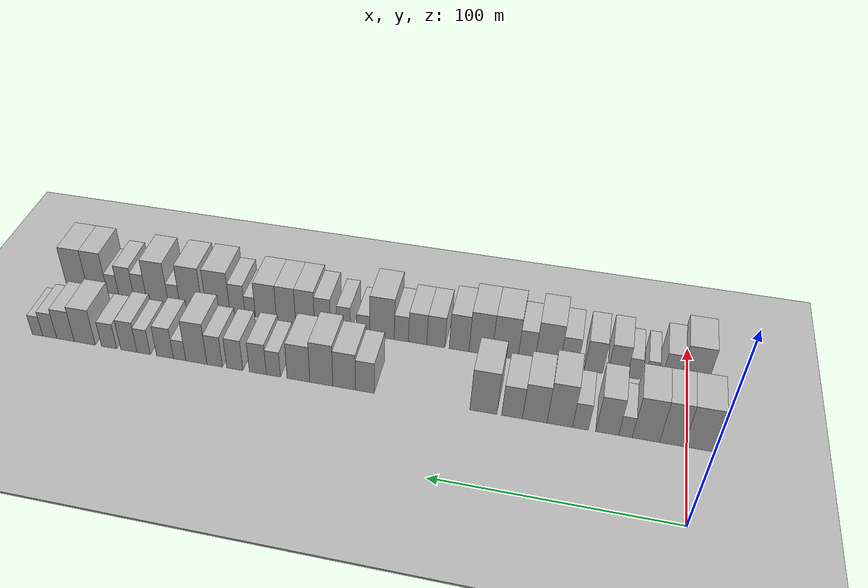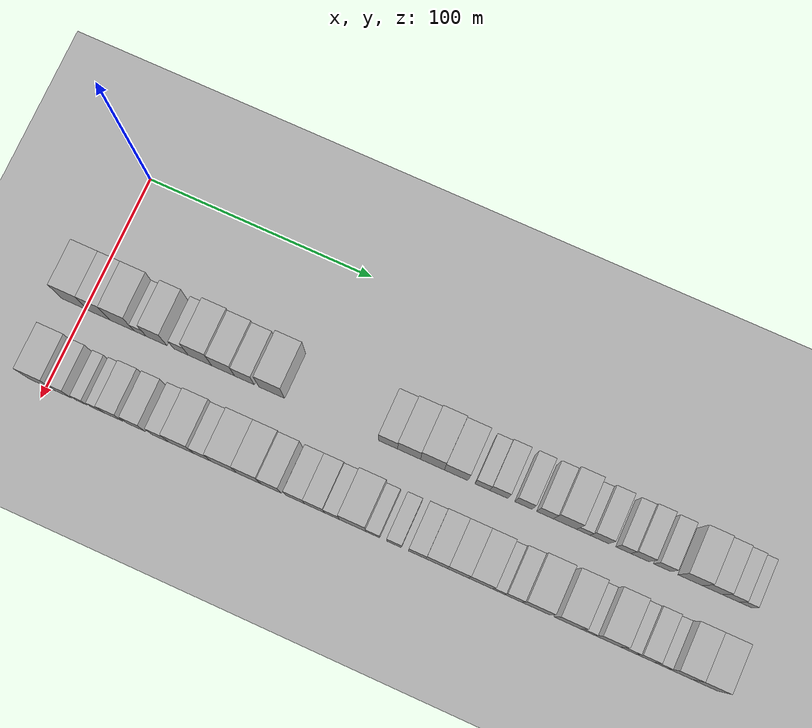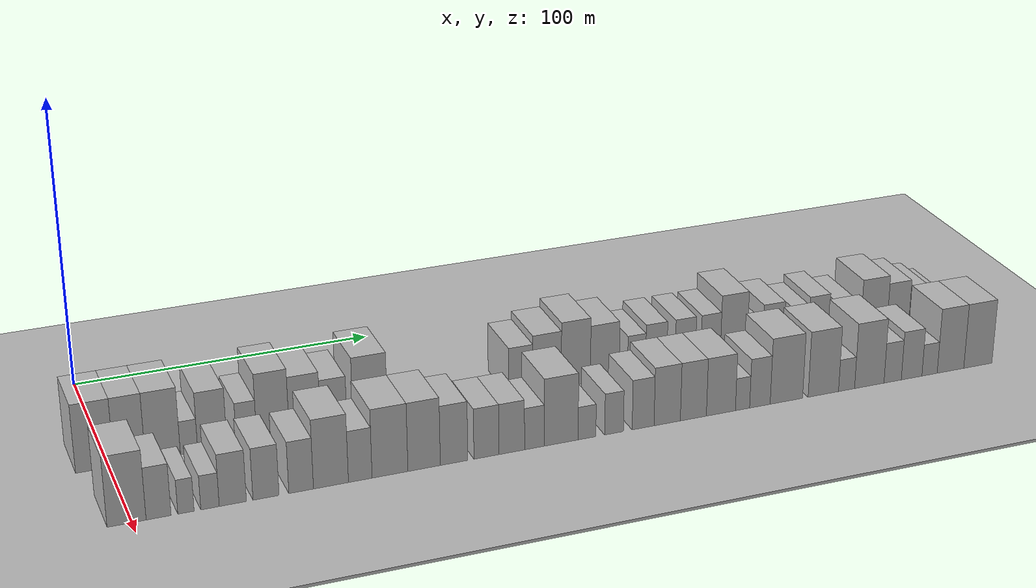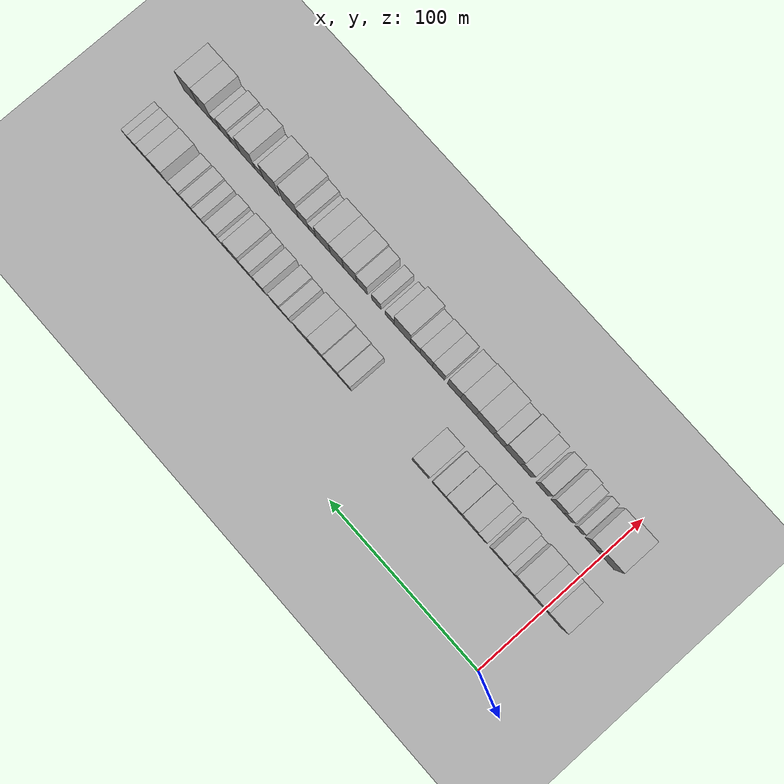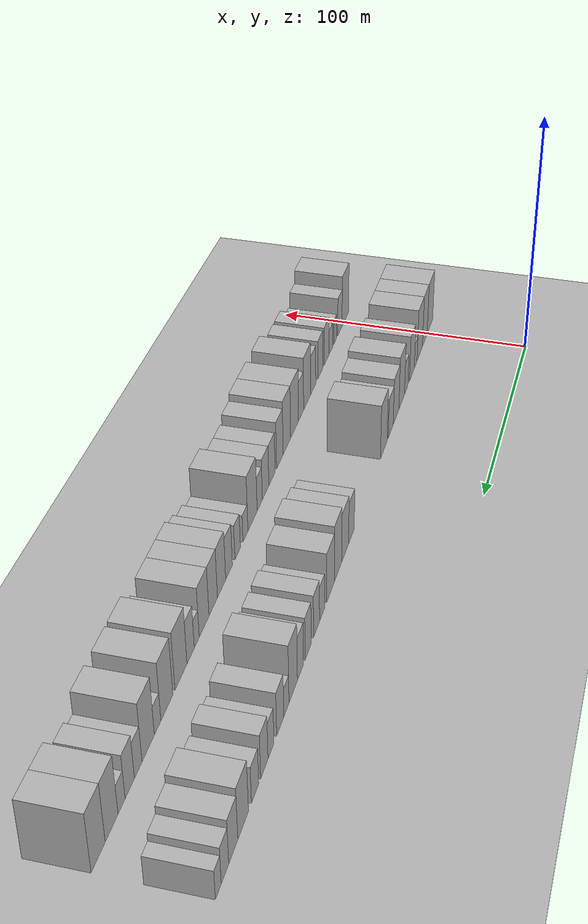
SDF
<sdf version="1.6">
 <world name="default">
  <include><name>ground_plane_1</name><uri>model://HANNAS_ground_plane</uri></include>
  <include>
   <name>ground_plane_2</name>
   <uri>model://HANNAS_ground_plane</uri>
   <pose>100 0 0  0 0 0</pose>
  </include>
  <model name="building_33">
   <static>1</static>
   <pose>50.0000 -4.4543 0 0.000000 0.000000 0.000000</pose>
   <link name="link">
    <pose>0 0 12.00 0 0 0</pose>
    <collision name="collision"><geometry><box><size>20.0000 11.8226 24.0000</size></box></geometry></collision>
    <visual name="visual">
     <cast_shadows>0</cast_shadows>
     <geometry><box><size>20.0000 11.8226 24.0000</size></box></geometry>
     <material>
      <script>
       <uri>model://HANNAS_wall/materials/scripts</uri>
       <uri>model://HANNAS_wall/materials/textures</uri>
       <name>vrc/HANNAS_wall</name>
      </script>
     </material>
    </visual>
   </link>
  </model>
  <model name="building_34">
   <static>1</static>
   <pose>50.0000 6.3101 0 0.000000 0.000000 0.000000</pose>
   <link name="link">
    <pose>0 0 12.00 0 0 0</pose>
    <collision name="collision"><geometry><box><size>20.0000 9.7060 24.0000</size></box></geometry></collision>
    <visual name="visual">
     <cast_shadows>0</cast_shadows>
     <geometry><box><size>20.0000 9.7060 24.0000</size></box></geometry>
     <material>
      <script>
       <uri>model://HANNAS_wall/materials/scripts</uri>
       <uri>model://HANNAS_wall/materials/textures</uri>
       <name>vrc/HANNAS_wall</name>
      </script>
     </material>
    </visual>
   </link>
  </model>
  <model name="building_35">
   <static>1</static>
   <pose>50.0000 16.6346 0 0.000000 0.000000 0.000000</pose>
   <link name="link">
    <pose>0 0 12.00 0 0 0</pose>
    <collision name="collision"><geometry><box><size>20.0000 10.9430 24.0000</size></box></geometry></collision>
    <visual name="visual">
     <cast_shadows>0</cast_shadows>
     <geometry><box><size>20.0000 10.9430 24.0000</size></box></geometry>
     <material>
      <script>
       <uri>model://HANNAS_wall/materials/scripts</uri>
       <uri>model://HANNAS_wall/materials/textures</uri>
       <name>vrc/HANNAS_wall</name>
      </script>
     </material>
    </visual>
   </link>
  </model>
  <model name="building_36">
   <static>1</static>
   <pose>50.0000 24.8381 0 0.000000 0.000000 0.000000</pose>
   <link name="link">
    <pose>0 0 6.00 0 0 0</pose>
    <collision name="collision"><geometry><box><size>20.0000 5.4641 12.0000</size></box></geometry></collision>
    <visual name="visual">
     <cast_shadows>0</cast_shadows>
     <geometry><box><size>20.0000 5.4641 12.0000</size></box></geometry>
     <material>
      <script>
       <uri>model://HANNAS_wall/materials/scripts</uri>
       <uri>model://HANNAS_wall/materials/textures</uri>
       <name>vrc/HANNAS_wall</name>
      </script>
     </material>
    </visual>
   </link>
  </model>
  <model name="building_37">
   <static>1</static>
   <pose>50.0000 32.2049 0 0.000000 0.000000 0.000000</pose>
   <link name="link">
    <pose>0 0 10.50 0 0 0</pose>
    <collision name="collision"><geometry><box><size>20.0000 9.2696 21.0000</size></box></geometry></collision>
    <visual name="visual">
     <cast_shadows>0</cast_shadows>
     <geometry><box><size>20.0000 9.2696 21.0000</size></box></geometry>
     <material>
      <script>
       <uri>model://HANNAS_wall/materials/scripts</uri>
       <uri>model://HANNAS_wall/materials/textures</uri>
       <name>vrc/HANNAS_wall</name>
      </script>
     </material>
    </visual>
   </link>
  </model>
  <model name="building_38">
   <static>1</static>
   <pose>50.0000 43.1029 0 0.000000 0.000000 0.000000</pose>
   <link name="link">
    <pose>0 0 7.50 0 0 0</pose>
    <collision name="collision"><geometry><box><size>20.0000 6.5264 15.0000</size></box></geometry></collision>
    <visual name="visual">
     <cast_shadows>0</cast_shadows>
     <geometry><box><size>20.0000 6.5264 15.0000</size></box></geometry>
     <material>
      <script>
       <uri>model://HANNAS_wall/materials/scripts</uri>
       <uri>model://HANNAS_wall/materials/textures</uri>
       <name>vrc/HANNAS_wall</name>
      </script>
     </material>
    </visual>
   </link>
  </model>
  <model name="building_39">
   <static>1</static>
   <pose>50.0000 51.6203 0 0.000000 0.000000 0.000000</pose>
   <link name="link">
    <pose>0 0 12.00 0 0 0</pose>
    <collision name="collision"><geometry><box><size>20.0000 10.5083 24.0000</size></box></geometry></collision>
    <visual name="visual">
     <cast_shadows>0</cast_shadows>
     <geometry><box><size>20.0000 10.5083 24.0000</size></box></geometry>
     <material>
      <script>
       <uri>model://HANNAS_wall/materials/scripts</uri>
       <uri>model://HANNAS_wall/materials/textures</uri>
       <name>vrc/HANNAS_wall</name>
      </script>
     </material>
    </visual>
   </link>
  </model>
  <model name="building_40">
   <static>1</static>
   <pose>50.0000 61.9553 0 0.000000 0.000000 0.000000</pose>
   <link name="link">
    <pose>0 0 10.50 0 0 0</pose>
    <collision name="collision"><geometry><box><size>20.0000 10.1617 21.0000</size></box></geometry></collision>
    <visual name="visual">
     <cast_shadows>0</cast_shadows>
     <geometry><box><size>20.0000 10.1617 21.0000</size></box></geometry>
     <material>
      <script>
       <uri>model://HANNAS_wall/materials/scripts</uri>
       <uri>model://HANNAS_wall/materials/textures</uri>
       <name>vrc/HANNAS_wall</name>
      </script>
     </material>
    </visual>
   </link>
  </model>
  <model name="building_41">
   <static>1</static>
   <pose>50.0000 71.3873 0 0.000000 0.000000 0.000000</pose>
   <link name="link">
    <pose>0 0 9.00 0 0 0</pose>
    <collision name="collision"><geometry><box><size>20.0000 8.7023 18.0000</size></box></geometry></collision>
    <visual name="visual">
     <cast_shadows>0</cast_shadows>
     <geometry><box><size>20.0000 8.7023 18.0000</size></box></geometry>
     <material>
      <script>
       <uri>model://HANNAS_wall/materials/scripts</uri>
       <uri>model://HANNAS_wall/materials/textures</uri>
       <name>vrc/HANNAS_wall</name>
      </script>
     </material>
    </visual>
   </link>
  </model>
  <model name="building_42">
   <static>1</static>
   <pose>50.0000 83.4444 0 0.000000 0.000000 0.000000</pose>
   <link name="link">
    <pose>0 0 12.00 0 0 0</pose>
    <collision name="collision"><geometry><box><size>20.0000 11.4119 24.0000</size></box></geometry></collision>
    <visual name="visual">
     <cast_shadows>0</cast_shadows>
     <geometry><box><size>20.0000 11.4119 24.0000</size></box></geometry>
     <material>
      <script>
       <uri>model://HANNAS_wall/materials/scripts</uri>
       <uri>model://HANNAS_wall/materials/textures</uri>
       <name>vrc/HANNAS_wall</name>
      </script>
     </material>
    </visual>
   </link>
  </model>
  <model name="building_43">
   <static>1</static>
   <pose>50.0000 134.6343 0 0.000000 0.000000 0.000000</pose>
   <link name="link">
    <pose>0 0 9.00 0 0 0</pose>
    <collision name="collision"><geometry><box><size>20.0000 8.3227 18.0000</size></box></geometry></collision>
    <visual name="visual">
     <cast_shadows>0</cast_shadows>
     <geometry><box><size>20.0000 8.3227 18.0000</size></box></geometry>
     <material>
      <script>
       <uri>model://HANNAS_wall/materials/scripts</uri>
       <uri>model://HANNAS_wall/materials/textures</uri>
       <name>vrc/HANNAS_wall</name>
      </script>
     </material>
    </visual>
   </link>
  </model>
  <model name="building_44">
   <static>1</static>
   <pose>50.0000 143.7940 0 0.000000 0.000000 0.000000</pose>
   <link name="link">
    <pose>0 0 10.50 0 0 0</pose>
    <collision name="collision"><geometry><box><size>20.0000 9.9968 21.0000</size></box></geometry></collision>
    <visual name="visual">
     <cast_shadows>0</cast_shadows>
     <geometry><box><size>20.0000 9.9968 21.0000</size></box></geometry>
     <material>
      <script>
       <uri>model://HANNAS_wall/materials/scripts</uri>
       <uri>model://HANNAS_wall/materials/textures</uri>
       <name>vrc/HANNAS_wall</name>
      </script>
     </material>
    </visual>
   </link>
  </model>
  <model name="building_45">
   <static>1</static>
   <pose>50.0000 153.9346 0 0.000000 0.000000 0.000000</pose>
   <link name="link">
    <pose>0 0 12.00 0 0 0</pose>
    <collision name="collision"><geometry><box><size>20.0000 10.2844 24.0000</size></box></geometry></collision>
    <visual name="visual">
     <cast_shadows>0</cast_shadows>
     <geometry><box><size>20.0000 10.2844 24.0000</size></box></geometry>
     <material>
      <script>
       <uri>model://HANNAS_wall/materials/scripts</uri>
       <uri>model://HANNAS_wall/materials/textures</uri>
       <name>vrc/HANNAS_wall</name>
      </script>
     </material>
    </visual>
   </link>
  </model>
  <model name="building_46">
   <static>1</static>
   <pose>50.0000 164.1987 0 0.000000 0.000000 0.000000</pose>
   <link name="link">
    <pose>0 0 10.50 0 0 0</pose>
    <collision name="collision"><geometry><box><size>20.0000 10.2437 21.0000</size></box></geometry></collision>
    <visual name="visual">
     <cast_shadows>0</cast_shadows>
     <geometry><box><size>20.0000 10.2437 21.0000</size></box></geometry>
     <material>
      <script>
       <uri>model://HANNAS_wall/materials/scripts</uri>
       <uri>model://HANNAS_wall/materials/textures</uri>
       <name>vrc/HANNAS_wall</name>
      </script>
     </material>
    </visual>
   </link>
  </model>
  <model name="building_47">
   <static>1</static>
   <pose>50.0000 175.5578 0 0.000000 0.000000 0.000000</pose>
   <link name="link">
    <pose>0 0 7.50 0 0 0</pose>
    <collision name="collision"><geometry><box><size>20.0000 6.4744 15.0000</size></box></geometry></collision>
    <visual name="visual">
     <cast_shadows>0</cast_shadows>
     <geometry><box><size>20.0000 6.4744 15.0000</size></box></geometry>
     <material>
      <script>
       <uri>model://HANNAS_wall/materials/scripts</uri>
       <uri>model://HANNAS_wall/materials/textures</uri>
       <name>vrc/HANNAS_wall</name>
      </script>
     </material>
    </visual>
   </link>
  </model>
  <model name="building_48">
   <static>1</static>
   <pose>50.0000 182.6504 0 0.000000 0.000000 0.000000</pose>
   <link name="link">
    <pose>0 0 9.00 0 0 0</pose>
    <collision name="collision"><geometry><box><size>20.0000 7.7110 18.0000</size></box></geometry></collision>
    <visual name="visual">
     <cast_shadows>0</cast_shadows>
     <geometry><box><size>20.0000 7.7110 18.0000</size></box></geometry>
     <material>
      <script>
       <uri>model://HANNAS_wall/materials/scripts</uri>
       <uri>model://HANNAS_wall/materials/textures</uri>
       <name>vrc/HANNAS_wall</name>
      </script>
     </material>
    </visual>
   </link>
  </model>
  <model name="building_49">
   <static>1</static>
   <pose>50.0000 193.2254 0 0.000000 0.000000 0.000000</pose>
   <link name="link">
    <pose>0 0 9.00 0 0 0</pose>
    <collision name="collision"><geometry><box><size>20.0000 7.4389 18.0000</size></box></geometry></collision>
    <visual name="visual">
     <cast_shadows>0</cast_shadows>
     <geometry><box><size>20.0000 7.4389 18.0000</size></box></geometry>
     <material>
      <script>
       <uri>model://HANNAS_wall/materials/scripts</uri>
       <uri>model://HANNAS_wall/materials/textures</uri>
       <name>vrc/HANNAS_wall</name>
      </script>
     </material>
    </visual>
   </link>
  </model>
  <model name="building_50">
   <static>1</static>
   <pose>50.0000 202.5473 0 0.000000 0.000000 0.000000</pose>
   <link name="link">
    <pose>0 0 9.00 0 0 0</pose>
    <collision name="collision"><geometry><box><size>20.0000 7.2050 18.0000</size></box></geometry></collision>
    <visual name="visual">
     <cast_shadows>0</cast_shadows>
     <geometry><box><size>20.0000 7.2050 18.0000</size></box></geometry>
     <material>
      <script>
       <uri>model://HANNAS_wall/materials/scripts</uri>
       <uri>model://HANNAS_wall/materials/textures</uri>
       <name>vrc/HANNAS_wall</name>
      </script>
     </material>
    </visual>
   </link>
  </model>
  <model name="building_51">
   <static>1</static>
   <pose>50.0000 211.0968 0 0.000000 0.000000 0.000000</pose>
   <link name="link">
    <pose>0 0 12.00 0 0 0</pose>
    <collision name="collision"><geometry><box><size>20.0000 9.8938 24.0000</size></box></geometry></collision>
    <visual name="visual">
     <cast_shadows>0</cast_shadows>
     <geometry><box><size>20.0000 9.8938 24.0000</size></box></geometry>
     <material>
      <script>
       <uri>model://HANNAS_wall/materials/scripts</uri>
       <uri>model://HANNAS_wall/materials/textures</uri>
       <name>vrc/HANNAS_wall</name>
      </script>
     </material>
    </visual>
   </link>
  </model>
  <model name="building_52">
   <static>1</static>
   <pose>50.0000 218.9433 0 0.000000 0.000000 0.000000</pose>
   <link name="link">
    <pose>0 0 6.00 0 0 0</pose>
    <collision name="collision"><geometry><box><size>20.0000 5.7993 12.0000</size></box></geometry></collision>
    <visual name="visual">
     <cast_shadows>0</cast_shadows>
     <geometry><box><size>20.0000 5.7993 12.0000</size></box></geometry>
     <material>
      <script>
       <uri>model://HANNAS_wall/materials/scripts</uri>
       <uri>model://HANNAS_wall/materials/textures</uri>
       <name>vrc/HANNAS_wall</name>
      </script>
     </material>
    </visual>
   </link>
  </model>
  <model name="building_53">
   <static>1</static>
   <pose>50.0000 225.8257 0 0.000000 0.000000 0.000000</pose>
   <link name="link">
    <pose>0 0 9.00 0 0 0</pose>
    <collision name="collision"><geometry><box><size>20.0000 7.9656 18.0000</size></box></geometry></collision>
    <visual name="visual">
     <cast_shadows>0</cast_shadows>
     <geometry><box><size>20.0000 7.9656 18.0000</size></box></geometry>
     <material>
      <script>
       <uri>model://HANNAS_wall/materials/scripts</uri>
       <uri>model://HANNAS_wall/materials/textures</uri>
       <name>vrc/HANNAS_wall</name>
      </script>
     </material>
    </visual>
   </link>
  </model>
  <model name="building_54">
   <static>1</static>
   <pose>50.0000 235.9830 0 0.000000 0.000000 0.000000</pose>
   <link name="link">
    <pose>0 0 7.50 0 0 0</pose>
    <collision name="collision"><geometry><box><size>20.0000 6.3490 15.0000</size></box></geometry></collision>
    <visual name="visual">
     <cast_shadows>0</cast_shadows>
     <geometry><box><size>20.0000 6.3490 15.0000</size></box></geometry>
     <material>
      <script>
       <uri>model://HANNAS_wall/materials/scripts</uri>
       <uri>model://HANNAS_wall/materials/textures</uri>
       <name>vrc/HANNAS_wall</name>
      </script>
     </material>
    </visual>
   </link>
  </model>
  <model name="building_55">
   <static>1</static>
   <pose>50.0000 243.0241 0 0.000000 0.000000 0.000000</pose>
   <link name="link">
    <pose>0 0 9.00 0 0 0</pose>
    <collision name="collision"><geometry><box><size>20.0000 7.7330 18.0000</size></box></geometry></collision>
    <visual name="visual">
     <cast_shadows>0</cast_shadows>
     <geometry><box><size>20.0000 7.7330 18.0000</size></box></geometry>
     <material>
      <script>
       <uri>model://HANNAS_wall/materials/scripts</uri>
       <uri>model://HANNAS_wall/materials/textures</uri>
       <name>vrc/HANNAS_wall</name>
      </script>
     </material>
    </visual>
   </link>
  </model>
  <model name="building_56">
   <static>1</static>
   <pose>50.0000 252.5628 0 0.000000 0.000000 0.000000</pose>
   <link name="link">
    <pose>0 0 7.50 0 0 0</pose>
    <collision name="collision"><geometry><box><size>20.0000 7.3444 15.0000</size></box></geometry></collision>
    <visual name="visual">
     <cast_shadows>0</cast_shadows>
     <geometry><box><size>20.0000 7.3444 15.0000</size></box></geometry>
     <material>
      <script>
       <uri>model://HANNAS_wall/materials/scripts</uri>
       <uri>model://HANNAS_wall/materials/textures</uri>
       <name>vrc/HANNAS_wall</name>
      </script>
     </material>
    </visual>
   </link>
  </model>
  <model name="building_57">
   <static>1</static>
   <pose>50.0000 264.3889 0 0.000000 0.000000 0.000000</pose>
   <link name="link">
    <pose>0 0 10.50 0 0 0</pose>
    <collision name="collision"><geometry><box><size>20.0000 10.3080 21.0000</size></box></geometry></collision>
    <visual name="visual">
     <cast_shadows>0</cast_shadows>
     <geometry><box><size>20.0000 10.3080 21.0000</size></box></geometry>
     <material>
      <script>
       <uri>model://HANNAS_wall/materials/scripts</uri>
       <uri>model://HANNAS_wall/materials/textures</uri>
       <name>vrc/HANNAS_wall</name>
      </script>
     </material>
    </visual>
   </link>
  </model>
  <model name="building_58">
   <static>1</static>
   <pose>50.0000 273.8150 0 0.000000 0.000000 0.000000</pose>
   <link name="link">
    <pose>0 0 9.00 0 0 0</pose>
    <collision name="collision"><geometry><box><size>20.0000 8.5441 18.0000</size></box></geometry></collision>
    <visual name="visual">
     <cast_shadows>0</cast_shadows>
     <geometry><box><size>20.0000 8.5441 18.0000</size></box></geometry>
     <material>
      <script>
       <uri>model://HANNAS_wall/materials/scripts</uri>
       <uri>model://HANNAS_wall/materials/textures</uri>
       <name>vrc/HANNAS_wall</name>
      </script>
     </material>
    </visual>
   </link>
  </model>
  <model name="building_59">
   <static>1</static>
   <pose>50.0000 281.5288 0 0.000000 0.000000 0.000000</pose>
   <link name="link">
    <pose>0 0 7.50 0 0 0</pose>
    <collision name="collision"><geometry><box><size>20.0000 6.8836 15.0000</size></box></geometry></collision>
    <visual name="visual">
     <cast_shadows>0</cast_shadows>
     <geometry><box><size>20.0000 6.8836 15.0000</size></box></geometry>
     <material>
      <script>
       <uri>model://HANNAS_wall/materials/scripts</uri>
       <uri>model://HANNAS_wall/materials/textures</uri>
       <name>vrc/HANNAS_wall</name>
      </script>
     </material>
    </visual>
   </link>
  </model>
  <model name="building_60">
   <static>1</static>
   <pose>50.0000 287.5890 0 0.000000 0.000000 0.000000</pose>
   <link name="link">
    <pose>0 0 6.00 0 0 0</pose>
    <collision name="collision"><geometry><box><size>20.0000 5.2366 12.0000</size></box></geometry></collision>
    <visual name="visual">
     <cast_shadows>0</cast_shadows>
     <geometry><box><size>20.0000 5.2366 12.0000</size></box></geometry>
     <material>
      <script>
       <uri>model://HANNAS_wall/materials/scripts</uri>
       <uri>model://HANNAS_wall/materials/textures</uri>
       <name>vrc/HANNAS_wall</name>
      </script>
     </material>
    </visual>
   </link>
  </model>
  <model name="building_91">
   <static>1</static>
   <pose>85.0000 -1.7479 0 0.000000 0.000000 0.000000</pose>
   <link name="link">
    <pose>0 0 12.00 0 0 0</pose>
    <collision name="collision"><geometry><box><size>20.0000 11.5440 24.0000</size></box></geometry></collision>
    <visual name="visual">
     <cast_shadows>0</cast_shadows>
     <geometry><box><size>20.0000 11.5440 24.0000</size></box></geometry>
     <material>
      <script>
       <uri>model://HANNAS_wall/materials/scripts</uri>
       <uri>model://HANNAS_wall/materials/textures</uri>
       <name>vrc/HANNAS_wall</name>
      </script>
     </material>
    </visual>
   </link>
  </model>
  <model name="building_92">
   <static>1</static>
   <pose>85.0000 7.7418 0 0.000000 0.000000 0.000000</pose>
   <link name="link">
    <pose>0 0 9.00 0 0 0</pose>
    <collision name="collision"><geometry><box><size>20.0000 7.4354 18.0000</size></box></geometry></collision>
    <visual name="visual">
     <cast_shadows>0</cast_shadows>
     <geometry><box><size>20.0000 7.4354 18.0000</size></box></geometry>
     <material>
      <script>
       <uri>model://HANNAS_wall/materials/scripts</uri>
       <uri>model://HANNAS_wall/materials/textures</uri>
       <name>vrc/HANNAS_wall</name>
      </script>
     </material>
    </visual>
   </link>
  </model>
  <model name="building_93">
   <static>1</static>
   <pose>85.0000 15.9081 0 0.000000 0.000000 0.000000</pose>
   <link name="link">
    <pose>0 0 6.00 0 0 0</pose>
    <collision name="collision"><geometry><box><size>20.0000 4.8971 12.0000</size></box></geometry></collision>
    <visual name="visual">
     <cast_shadows>0</cast_shadows>
     <geometry><box><size>20.0000 4.8971 12.0000</size></box></geometry>
     <material>
      <script>
       <uri>model://HANNAS_wall/materials/scripts</uri>
       <uri>model://HANNAS_wall/materials/textures</uri>
       <name>vrc/HANNAS_wall</name>
      </script>
     </material>
    </visual>
   </link>
  </model>
  <model name="building_94">
   <static>1</static>
   <pose>85.0000 23.1462 0 0.000000 0.000000 0.000000</pose>
   <link name="link">
    <pose>0 0 6.00 0 0 0</pose>
    <collision name="collision"><geometry><box><size>20.0000 5.5792 12.0000</size></box></geometry></collision>
    <visual name="visual">
     <cast_shadows>0</cast_shadows>
     <geometry><box><size>20.0000 5.5792 12.0000</size></box></geometry>
     <material>
      <script>
       <uri>model://HANNAS_wall/materials/scripts</uri>
       <uri>model://HANNAS_wall/materials/textures</uri>
       <name>vrc/HANNAS_wall</name>
      </script>
     </material>
    </visual>
   </link>
  </model>
  <model name="building_95">
   <static>1</static>
   <pose>85.0000 30.0703 0 0.000000 0.000000 0.000000</pose>
   <link name="link">
    <pose>0 0 9.00 0 0 0</pose>
    <collision name="collision"><geometry><box><size>20.0000 8.2689 18.0000</size></box></geometry></collision>
    <visual name="visual">
     <cast_shadows>0</cast_shadows>
     <geometry><box><size>20.0000 8.2689 18.0000</size></box></geometry>
     <material>
      <script>
       <uri>model://HANNAS_wall/materials/scripts</uri>
       <uri>model://HANNAS_wall/materials/textures</uri>
       <name>vrc/HANNAS_wall</name>
      </script>
     </material>
    </visual>
   </link>
  </model>
  <model name="building_96">
   <static>1</static>
   <pose>85.0000 40.2234 0 0.000000 0.000000 0.000000</pose>
   <link name="link">
    <pose>0 0 9.00 0 0 0</pose>
    <collision name="collision"><geometry><box><size>20.0000 8.0373 18.0000</size></box></geometry></collision>
    <visual name="visual">
     <cast_shadows>0</cast_shadows>
     <geometry><box><size>20.0000 8.0373 18.0000</size></box></geometry>
     <material>
      <script>
       <uri>model://HANNAS_wall/materials/scripts</uri>
       <uri>model://HANNAS_wall/materials/textures</uri>
       <name>vrc/HANNAS_wall</name>
      </script>
     </material>
    </visual>
   </link>
  </model>
  <model name="building_97">
   <static>1</static>
   <pose>85.0000 51.0671 0 0.000000 0.000000 0.000000</pose>
   <link name="link">
    <pose>0 0 9.00 0 0 0</pose>
    <collision name="collision"><geometry><box><size>20.0000 7.6502 18.0000</size></box></geometry></collision>
    <visual name="visual">
     <cast_shadows>0</cast_shadows>
     <geometry><box><size>20.0000 7.6502 18.0000</size></box></geometry>
     <material>
      <script>
       <uri>model://HANNAS_wall/materials/scripts</uri>
       <uri>model://HANNAS_wall/materials/textures</uri>
       <name>vrc/HANNAS_wall</name>
      </script>
     </material>
    </visual>
   </link>
  </model>
  <model name="building_98">
   <static>1</static>
   <pose>85.0000 60.3698 0 0.000000 0.000000 0.000000</pose>
   <link name="link">
    <pose>0 0 12.00 0 0 0</pose>
    <collision name="collision"><geometry><box><size>20.0000 10.9551 24.0000</size></box></geometry></collision>
    <visual name="visual">
     <cast_shadows>0</cast_shadows>
     <geometry><box><size>20.0000 10.9551 24.0000</size></box></geometry>
     <material>
      <script>
       <uri>model://HANNAS_wall/materials/scripts</uri>
       <uri>model://HANNAS_wall/materials/textures</uri>
       <name>vrc/HANNAS_wall</name>
      </script>
     </material>
    </visual>
   </link>
  </model>
  <model name="building_99">
   <static>1</static>
   <pose>85.0000 69.5813 0 0.000000 0.000000 0.000000</pose>
   <link name="link">
    <pose>0 0 9.00 0 0 0</pose>
    <collision name="collision"><geometry><box><size>20.0000 7.4679 18.0000</size></box></geometry></collision>
    <visual name="visual">
     <cast_shadows>0</cast_shadows>
     <geometry><box><size>20.0000 7.4679 18.0000</size></box></geometry>
     <material>
      <script>
       <uri>model://HANNAS_wall/materials/scripts</uri>
       <uri>model://HANNAS_wall/materials/textures</uri>
       <name>vrc/HANNAS_wall</name>
      </script>
     </material>
    </visual>
   </link>
  </model>
  <model name="building_100">
   <static>1</static>
   <pose>85.0000 79.0236 0 0.000000 0.000000 0.000000</pose>
   <link name="link">
    <pose>0 0 12.00 0 0 0</pose>
    <collision name="collision"><geometry><box><size>20.0000 11.4165 24.0000</size></box></geometry></collision>
    <visual name="visual">
     <cast_shadows>0</cast_shadows>
     <geometry><box><size>20.0000 11.4165 24.0000</size></box></geometry>
     <material>
      <script>
       <uri>model://HANNAS_wall/materials/scripts</uri>
       <uri>model://HANNAS_wall/materials/textures</uri>
       <name>vrc/HANNAS_wall</name>
      </script>
     </material>
    </visual>
   </link>
  </model>
  <model name="building_101">
   <static>1</static>
   <pose>85.0000 89.9531 0 0.000000 0.000000 0.000000</pose>
   <link name="link">
    <pose>0 0 12.00 0 0 0</pose>
    <collision name="collision"><geometry><box><size>20.0000 10.4426 24.0000</size></box></geometry></collision>
    <visual name="visual">
     <cast_shadows>0</cast_shadows>
     <geometry><box><size>20.0000 10.4426 24.0000</size></box></geometry>
     <material>
      <script>
       <uri>model://HANNAS_wall/materials/scripts</uri>
       <uri>model://HANNAS_wall/materials/textures</uri>
       <name>vrc/HANNAS_wall</name>
      </script>
     </material>
    </visual>
   </link>
  </model>
  <model name="building_102">
   <static>1</static>
   <pose>85.0000 99.6413 0 0.000000 0.000000 0.000000</pose>
   <link name="link">
    <pose>0 0 10.50 0 0 0</pose>
    <collision name="collision"><geometry><box><size>20.0000 8.9336 21.0000</size></box></geometry></collision>
    <visual name="visual">
     <cast_shadows>0</cast_shadows>
     <geometry><box><size>20.0000 8.9336 21.0000</size></box></geometry>
     <material>
      <script>
       <uri>model://HANNAS_wall/materials/scripts</uri>
       <uri>model://HANNAS_wall/materials/textures</uri>
       <name>vrc/HANNAS_wall</name>
      </script>
     </material>
    </visual>
   </link>
  </model>
  <model name="building_103">
   <static>1</static>
   <pose>85.0000 110.2249 0 0.000000 0.000000 0.000000</pose>
   <link name="link">
    <pose>0 0 9.00 0 0 0</pose>
    <collision name="collision"><geometry><box><size>20.0000 8.2338 18.0000</size></box></geometry></collision>
    <visual name="visual">
     <cast_shadows>0</cast_shadows>
     <geometry><box><size>20.0000 8.2338 18.0000</size></box></geometry>
     <material>
      <script>
       <uri>model://HANNAS_wall/materials/scripts</uri>
       <uri>model://HANNAS_wall/materials/textures</uri>
       <name>vrc/HANNAS_wall</name>
      </script>
     </material>
    </visual>
   </link>
  </model>
  <model name="building_104">
   <static>1</static>
   <pose>85.0000 118.5637 0 0.000000 0.000000 0.000000</pose>
   <link name="link">
    <pose>0 0 9.00 0 0 0</pose>
    <collision name="collision"><geometry><box><size>20.0000 8.4438 18.0000</size></box></geometry></collision>
    <visual name="visual">
     <cast_shadows>0</cast_shadows>
     <geometry><box><size>20.0000 8.4438 18.0000</size></box></geometry>
     <material>
      <script>
       <uri>model://HANNAS_wall/materials/scripts</uri>
       <uri>model://HANNAS_wall/materials/textures</uri>
       <name>vrc/HANNAS_wall</name>
      </script>
     </material>
    </visual>
   </link>
  </model>
  <model name="building_105">
   <static>1</static>
   <pose>85.0000 126.0707 0 0.000000 0.000000 0.000000</pose>
   <link name="link">
    <pose>0 0 7.50 0 0 0</pose>
    <collision name="collision"><geometry><box><size>20.0000 6.5702 15.0000</size></box></geometry></collision>
    <visual name="visual">
     <cast_shadows>0</cast_shadows>
     <geometry><box><size>20.0000 6.5702 15.0000</size></box></geometry>
     <material>
      <script>
       <uri>model://HANNAS_wall/materials/scripts</uri>
       <uri>model://HANNAS_wall/materials/textures</uri>
       <name>vrc/HANNAS_wall</name>
      </script>
     </material>
    </visual>
   </link>
  </model>
  <model name="building_106">
   <static>1</static>
   <pose>85.0000 135.0469 0 0.000000 0.000000 0.000000</pose>
   <link name="link">
    <pose>0 0 12.00 0 0 0</pose>
    <collision name="collision"><geometry><box><size>20.0000 11.3823 24.0000</size></box></geometry></collision>
    <visual name="visual">
     <cast_shadows>0</cast_shadows>
     <geometry><box><size>20.0000 11.3823 24.0000</size></box></geometry>
     <material>
      <script>
       <uri>model://HANNAS_wall/materials/scripts</uri>
       <uri>model://HANNAS_wall/materials/textures</uri>
       <name>vrc/HANNAS_wall</name>
      </script>
     </material>
    </visual>
   </link>
  </model>
  <model name="building_107">
   <static>1</static>
   <pose>85.0000 143.7353 0 0.000000 0.000000 0.000000</pose>
   <link name="link">
    <pose>0 0 6.00 0 0 0</pose>
    <collision name="collision"><geometry><box><size>20.0000 5.9945 12.0000</size></box></geometry></collision>
    <visual name="visual">
     <cast_shadows>0</cast_shadows>
     <geometry><box><size>20.0000 5.9945 12.0000</size></box></geometry>
     <material>
      <script>
       <uri>model://HANNAS_wall/materials/scripts</uri>
       <uri>model://HANNAS_wall/materials/textures</uri>
       <name>vrc/HANNAS_wall</name>
      </script>
     </material>
    </visual>
   </link>
  </model>
  <model name="building_108">
   <static>1</static>
   <pose>85.0000 152.9280 0 0.000000 0.000000 0.000000</pose>
   <link name="link">
    <pose>0 0 7.50 0 0 0</pose>
    <collision name="collision"><geometry><box><size>20.0000 6.3908 15.0000</size></box></geometry></collision>
    <visual name="visual">
     <cast_shadows>0</cast_shadows>
     <geometry><box><size>20.0000 6.3908 15.0000</size></box></geometry>
     <material>
      <script>
       <uri>model://HANNAS_wall/materials/scripts</uri>
       <uri>model://HANNAS_wall/materials/textures</uri>
       <name>vrc/HANNAS_wall</name>
      </script>
     </material>
    </visual>
   </link>
  </model>
  <model name="building_109">
   <static>1</static>
   <pose>85.0000 162.8890 0 0.000000 0.000000 0.000000</pose>
   <link name="link">
    <pose>0 0 9.00 0 0 0</pose>
    <collision name="collision"><geometry><box><size>20.0000 7.5312 18.0000</size></box></geometry></collision>
    <visual name="visual">
     <cast_shadows>0</cast_shadows>
     <geometry><box><size>20.0000 7.5312 18.0000</size></box></geometry>
     <material>
      <script>
       <uri>model://HANNAS_wall/materials/scripts</uri>
       <uri>model://HANNAS_wall/materials/textures</uri>
       <name>vrc/HANNAS_wall</name>
      </script>
     </material>
    </visual>
   </link>
  </model>
  <model name="building_110">
   <static>1</static>
   <pose>85.0000 171.2267 0 0.000000 0.000000 0.000000</pose>
   <link name="link">
    <pose>0 0 10.50 0 0 0</pose>
    <collision name="collision"><geometry><box><size>20.0000 9.1442 21.0000</size></box></geometry></collision>
    <visual name="visual">
     <cast_shadows>0</cast_shadows>
     <geometry><box><size>20.0000 9.1442 21.0000</size></box></geometry>
     <material>
      <script>
       <uri>model://HANNAS_wall/materials/scripts</uri>
       <uri>model://HANNAS_wall/materials/textures</uri>
       <name>vrc/HANNAS_wall</name>
      </script>
     </material>
    </visual>
   </link>
  </model>
  <model name="building_111">
   <static>1</static>
   <pose>85.0000 180.3593 0 0.000000 0.000000 0.000000</pose>
   <link name="link">
    <pose>0 0 10.50 0 0 0</pose>
    <collision name="collision"><geometry><box><size>20.0000 9.1211 21.0000</size></box></geometry></collision>
    <visual name="visual">
     <cast_shadows>0</cast_shadows>
     <geometry><box><size>20.0000 9.1211 21.0000</size></box></geometry>
     <material>
      <script>
       <uri>model://HANNAS_wall/materials/scripts</uri>
       <uri>model://HANNAS_wall/materials/textures</uri>
       <name>vrc/HANNAS_wall</name>
      </script>
     </material>
    </visual>
   </link>
  </model>
  <model name="building_112">
   <static>1</static>
   <pose>85.0000 190.0419 0 0.000000 0.000000 0.000000</pose>
   <link name="link">
    <pose>0 0 10.50 0 0 0</pose>
    <collision name="collision"><geometry><box><size>20.0000 10.2440 21.0000</size></box></geometry></collision>
    <visual name="visual">
     <cast_shadows>0</cast_shadows>
     <geometry><box><size>20.0000 10.2440 21.0000</size></box></geometry>
     <material>
      <script>
       <uri>model://HANNAS_wall/materials/scripts</uri>
       <uri>model://HANNAS_wall/materials/textures</uri>
       <name>vrc/HANNAS_wall</name>
      </script>
     </material>
    </visual>
   </link>
  </model>
  <model name="building_113">
   <static>1</static>
   <pose>85.0000 197.6873 0 0.000000 0.000000 0.000000</pose>
   <link name="link">
    <pose>0 0 6.00 0 0 0</pose>
    <collision name="collision"><geometry><box><size>20.0000 5.0468 12.0000</size></box></geometry></collision>
    <visual name="visual">
     <cast_shadows>0</cast_shadows>
     <geometry><box><size>20.0000 5.0468 12.0000</size></box></geometry>
     <material>
      <script>
       <uri>model://HANNAS_wall/materials/scripts</uri>
       <uri>model://HANNAS_wall/materials/textures</uri>
       <name>vrc/HANNAS_wall</name>
      </script>
     </material>
    </visual>
   </link>
  </model>
  <model name="building_114">
   <static>1</static>
   <pose>85.0000 203.8885 0 0.000000 0.000000 0.000000</pose>
   <link name="link">
    <pose>0 0 9.00 0 0 0</pose>
    <collision name="collision"><geometry><box><size>20.0000 7.3555 18.0000</size></box></geometry></collision>
    <visual name="visual">
     <cast_shadows>0</cast_shadows>
     <geometry><box><size>20.0000 7.3555 18.0000</size></box></geometry>
     <material>
      <script>
       <uri>model://HANNAS_wall/materials/scripts</uri>
       <uri>model://HANNAS_wall/materials/textures</uri>
       <name>vrc/HANNAS_wall</name>
      </script>
     </material>
    </visual>
   </link>
  </model>
  <model name="building_115">
   <static>1</static>
   <pose>85.0000 213.4123 0 0.000000 0.000000 0.000000</pose>
   <link name="link">
    <pose>0 0 12.00 0 0 0</pose>
    <collision name="collision"><geometry><box><size>20.0000 11.6922 24.0000</size></box></geometry></collision>
    <visual name="visual">
     <cast_shadows>0</cast_shadows>
     <geometry><box><size>20.0000 11.6922 24.0000</size></box></geometry>
     <material>
      <script>
       <uri>model://HANNAS_wall/materials/scripts</uri>
       <uri>model://HANNAS_wall/materials/textures</uri>
       <name>vrc/HANNAS_wall</name>
      </script>
     </material>
    </visual>
   </link>
  </model>
  <model name="building_116">
   <static>1</static>
   <pose>85.0000 226.8167 0 0.000000 0.000000 0.000000</pose>
   <link name="link">
    <pose>0 0 12.00 0 0 0</pose>
    <collision name="collision"><geometry><box><size>20.0000 11.1165 24.0000</size></box></geometry></collision>
    <visual name="visual">
     <cast_shadows>0</cast_shadows>
     <geometry><box><size>20.0000 11.1165 24.0000</size></box></geometry>
     <material>
      <script>
       <uri>model://HANNAS_wall/materials/scripts</uri>
       <uri>model://HANNAS_wall/materials/textures</uri>
       <name>vrc/HANNAS_wall</name>
      </script>
     </material>
    </visual>
   </link>
  </model>
  <model name="building_117">
   <static>1</static>
   <pose>85.0000 235.3217 0 0.000000 0.000000 0.000000</pose>
   <link name="link">
    <pose>0 0 6.00 0 0 0</pose>
    <collision name="collision"><geometry><box><size>20.0000 5.8935 12.0000</size></box></geometry></collision>
    <visual name="visual">
     <cast_shadows>0</cast_shadows>
     <geometry><box><size>20.0000 5.8935 12.0000</size></box></geometry>
     <material>
      <script>
       <uri>model://HANNAS_wall/materials/scripts</uri>
       <uri>model://HANNAS_wall/materials/textures</uri>
       <name>vrc/HANNAS_wall</name>
      </script>
     </material>
    </visual>
   </link>
  </model>
  <model name="building_118">
   <static>1</static>
   <pose>85.0000 243.7147 0 0.000000 0.000000 0.000000</pose>
   <link name="link">
    <pose>0 0 12.00 0 0 0</pose>
    <collision name="collision"><geometry><box><size>20.0000 10.8926 24.0000</size></box></geometry></collision>
    <visual name="visual">
     <cast_shadows>0</cast_shadows>
     <geometry><box><size>20.0000 10.8926 24.0000</size></box></geometry>
     <material>
      <script>
       <uri>model://HANNAS_wall/materials/scripts</uri>
       <uri>model://HANNAS_wall/materials/textures</uri>
       <name>vrc/HANNAS_wall</name>
      </script>
     </material>
    </visual>
   </link>
  </model>
  <model name="building_119">
   <static>1</static>
   <pose>85.0000 252.3911 0 0.000000 0.000000 0.000000</pose>
   <link name="link">
    <pose>0 0 7.50 0 0 0</pose>
    <collision name="collision"><geometry><box><size>20.0000 6.4602 15.0000</size></box></geometry></collision>
    <visual name="visual">
     <cast_shadows>0</cast_shadows>
     <geometry><box><size>20.0000 6.4602 15.0000</size></box></geometry>
     <material>
      <script>
       <uri>model://HANNAS_wall/materials/scripts</uri>
       <uri>model://HANNAS_wall/materials/textures</uri>
       <name>vrc/HANNAS_wall</name>
      </script>
     </material>
    </visual>
   </link>
  </model>
  <model name="building_120">
   <static>1</static>
   <pose>85.0000 259.4991 0 0.000000 0.000000 0.000000</pose>
   <link name="link">
    <pose>0 0 9.00 0 0 0</pose>
    <collision name="collision"><geometry><box><size>20.0000 7.7557 18.0000</size></box></geometry></collision>
    <visual name="visual">
     <cast_shadows>0</cast_shadows>
     <geometry><box><size>20.0000 7.7557 18.0000</size></box></geometry>
     <material>
      <script>
       <uri>model://HANNAS_wall/materials/scripts</uri>
       <uri>model://HANNAS_wall/materials/textures</uri>
       <name>vrc/HANNAS_wall</name>
      </script>
     </material>
    </visual>
   </link>
  </model>
  <model name="building_121">
   <static>1</static>
   <pose>85.0000 266.2592 0 0.000000 0.000000 0.000000</pose>
   <link name="link">
    <pose>0 0 6.00 0 0 0</pose>
    <collision name="collision"><geometry><box><size>20.0000 5.7647 12.0000</size></box></geometry></collision>
    <visual name="visual">
     <cast_shadows>0</cast_shadows>
     <geometry><box><size>20.0000 5.7647 12.0000</size></box></geometry>
     <material>
      <script>
       <uri>model://HANNAS_wall/materials/scripts</uri>
       <uri>model://HANNAS_wall/materials/textures</uri>
       <name>vrc/HANNAS_wall</name>
      </script>
     </material>
    </visual>
   </link>
  </model>
  <model name="building_122">
   <static>1</static>
   <pose>85.0000 274.1996 0 0.000000 0.000000 0.000000</pose>
   <link name="link">
    <pose>0 0 12.00 0 0 0</pose>
    <collision name="collision"><geometry><box><size>20.0000 10.1161 24.0000</size></box></geometry></collision>
    <visual name="visual">
     <cast_shadows>0</cast_shadows>
     <geometry><box><size>20.0000 10.1161 24.0000</size></box></geometry>
     <material>
      <script>
       <uri>model://HANNAS_wall/materials/scripts</uri>
       <uri>model://HANNAS_wall/materials/textures</uri>
       <name>vrc/HANNAS_wall</name>
      </script>
     </material>
    </visual>
   </link>
  </model>
  <model name="building_123">
   <static>1</static>
   <pose>85.0000 284.6547 0 0.000000 0.000000 0.000000</pose>
   <link name="link">
    <pose>0 0 12.00 0 0 0</pose>
    <collision name="collision"><geometry><box><size>20.0000 10.7940 24.0000</size></box></geometry></collision>
    <visual name="visual">
     <cast_shadows>0</cast_shadows>
     <geometry><box><size>20.0000 10.7940 24.0000</size></box></geometry>
     <material>
      <script>
       <uri>model://HANNAS_wall/materials/scripts</uri>
       <uri>model://HANNAS_wall/materials/textures</uri>
       <name>vrc/HANNAS_wall</name>
      </script>
     </material>
    </visual>
   </link>
  </model>
 </world>
</sdf>
